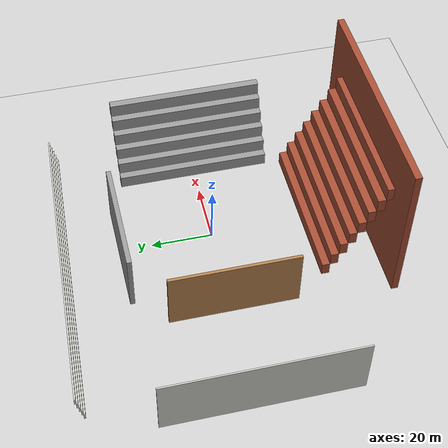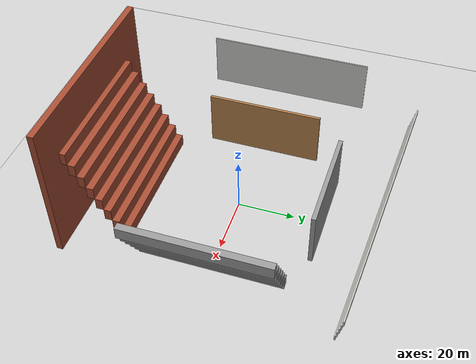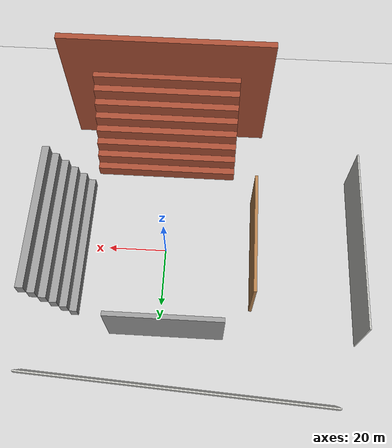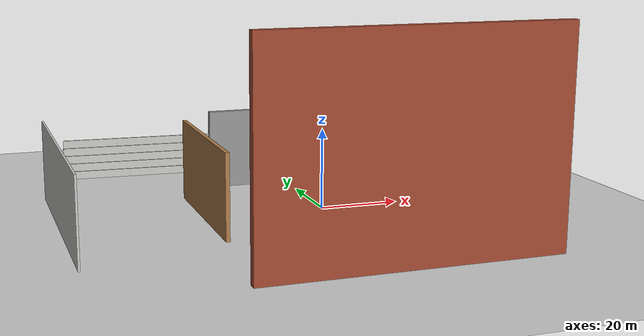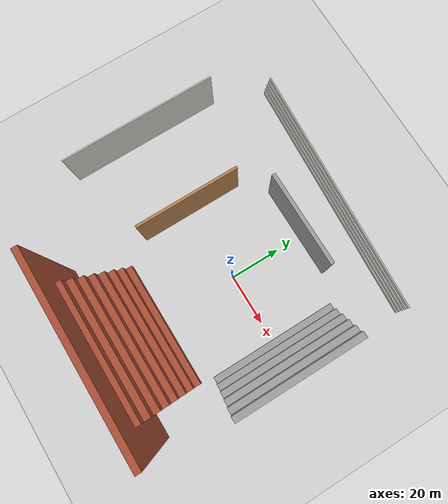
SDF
<sdf version="1.7">
 <world name="default">
  <model name="ground_plane">
   <static>1</static>
   <link name="link">
    <collision name="collision">
     <geometry><plane><normal>0 0 1</normal><size>100 100</size></plane></geometry>
     <surface><friction><ode><mu>100</mu><mu2>50</mu2></ode></friction></surface>
    </collision>
    <visual name="visual">
     <cast_shadows>0</cast_shadows>
     <geometry><plane><normal>0 0 1</normal><size>100 100</size></plane></geometry>
     <material>
      <script><uri>file://media/materials/scripts/gazebo.material</uri><name>Gazebo/Grey</name></script>
     </material>
    </visual>
   </link>
  </model>
  <light name="sun" type="directional">
   <pose>0 0 10 0 -0 0</pose>
   <diffuse>0.8 0.8 0.8 1</diffuse>
   <specular>0.2 0.2 0.2 1</specular>
   <attenuation>
    <range>1000</range>
    <constant>0.9</constant>
    <linear>0.01</linear>
    <quadratic>0.001</quadratic>
   </attenuation>
   <direction>-0.5 0.1 -0.9</direction>
   <spot><inner_angle>0</inner_angle><outer_angle>0</outer_angle><falloff>0</falloff></spot>
  </light>
  <physics name="default_physics" default="0" type="ode">
   <max_contacts>100</max_contacts>
   <max_step_size>0.01</max_step_size>
   <ode>
    <solver>
     <iters>50</iters>
     <type>quick</type>
     <sor>1.3</sor>
     <use_dynamic_moi_rescaling>0</use_dynamic_moi_rescaling>
    </solver>
    <constraints>
     <cfm>0</cfm>
     <erp>0.2</erp>
     <contact_max_correcting_vel>100</contact_max_correcting_vel>
     <contact_surface_layer>0.001</contact_surface_layer>
    </constraints>
   </ode>
   <real_time_factor>1</real_time_factor>
   <real_time_update_rate>1000</real_time_update_rate>
  </physics>
  <gravity>0 0 -9.8</gravity>
  <magnetic_field>6e-06 2.3e-05 -4.2e-05</magnetic_field>
  <atmosphere type="adiabatic"/>
  <scene><ambient>0.4 0.4 0.4 1</ambient><background>0.7 0.7 0.7 1</background><shadows>1</shadows></scene>
  <spherical_coordinates>
   <surface_model>EARTH_WGS84</surface_model>
   <latitude_deg>0</latitude_deg>
   <longitude_deg>0</longitude_deg>
   <elevation>0</elevation>
   <heading_deg>0</heading_deg>
  </spherical_coordinates>
  <model name="Untitled_0">
   <pose>1.76469 -50.5759 0 0 -0 0</pose>
   <link name="Wall_0">
    <collision name="Wall_0_Collision">
     <geometry><box><size>70.5 2.15 50.5</size></box></geometry>
     <pose>0 0 25.25 0 -0 0</pose>
    </collision>
    <visual name="Wall_0_Visual">
     <pose>0 0 25.25 0 -0 0</pose>
     <geometry><box><size>70.5 2.15 50.5</size></box></geometry>
     <material>
      <script><uri>file://media/materials/scripts/gazebo.material</uri><name>Gazebo/Bricks</name></script>
      <ambient>1 1 1 1</ambient>
     </material>
     <meta><layer>0</layer></meta>
    </visual>
   </link>
   <static>1</static>
  </model>
  <model name="Untitled_1">
   <pose>-64.542 -0.116687 0 0 -0 0</pose>
   <link name="Wall_2">
    <collision name="Wall_2_Collision">
     <geometry><box><size>61.25 0.5 20.5</size></box></geometry>
     <pose>0 0 10.25 0 -0 0</pose>
    </collision>
    <visual name="Wall_2_Visual">
     <pose>0 0 10.25 0 -0 0</pose>
     <geometry><box><size>61.25 0.5 20.5</size></box></geometry>
     <material>
      <script><uri>file://media/materials/scripts/gazebo.material</uri><name>Gazebo/CeilingTiled</name></script>
      <ambient>0.996078 0.47451 0.0196078 1</ambient>
     </material>
     <meta><layer>0</layer></meta>
    </visual>
    <pose>0 -1e-06 0 0 -0 1.5708</pose>
   </link>
   <link name="Wall_3">
    <collision name="Wall_3_Collision">
     <geometry><box><size>0.15 0.15 2.5</size></box></geometry>
     <pose>0 0 1.25 0 -0 0</pose>
    </collision>
    <visual name="Wall_3_Visual">
     <pose>0 0 1.25 0 -0 0</pose>
     <geometry><box><size>0.15 0.15 2.5</size></box></geometry>
     <material>
      <script><uri>file://media/materials/scripts/gazebo.material</uri><name>Gazebo/Grey</name></script>
      <ambient>1 1 1 1</ambient>
     </material>
     <meta><layer>0</layer></meta>
    </visual>
    <pose>0 30.375 0 0 -0 0</pose>
   </link>
   <static>1</static>
  </model>
  <model name="Untitled_2">
   <pose>-6.95253 48.424 0 0 -0 3.08477</pose>
   <link name="Stairs_1">
    <visual name="Stairs_1_Visual_0">
     <pose>-1e-06 1 1.05 0 -0 0</pose>
     <geometry><box><size>100.66 0.5 2.1</size></box></geometry>
     <material>
      <script><uri>file://media/materials/scripts/gazebo.material</uri><name>Gazebo/CeilingTiled</name></script>
      <ambient>0.996078 0.47451 0.0196078 1</ambient>
     </material>
     <meta><layer>0</layer></meta>
    </visual>
    <collision name="Stairs_1_Collision_0">
     <geometry><box><size>100.66 0.5 2.1</size></box></geometry>
     <pose>-1e-06 1 1.05 0 -0 0</pose>
    </collision>
    <visual name="Stairs_1_Visual_1">
     <pose>-1e-06 0.5 3.15 0 -0 0</pose>
     <geometry><box><size>100.66 0.5 2.1</size></box></geometry>
     <material>
      <script><uri>file://media/materials/scripts/gazebo.material</uri><name>Gazebo/CeilingTiled</name></script>
      <ambient>0.996078 0.47451 0.0196078 1</ambient>
     </material>
     <meta><layer>0</layer></meta>
    </visual>
    <collision name="Stairs_1_Collision_1">
     <geometry><box><size>100.66 0.5 2.1</size></box></geometry>
     <pose>-1e-06 0.5 3.15 0 -0 0</pose>
    </collision>
    <visual name="Stairs_1_Visual_2">
     <pose>-1e-06 0 5.25 0 -0 0</pose>
     <geometry><box><size>100.66 0.5 2.1</size></box></geometry>
     <material>
      <script><uri>file://media/materials/scripts/gazebo.material</uri><name>Gazebo/CeilingTiled</name></script>
      <ambient>0.996078 0.47451 0.0196078 1</ambient>
     </material>
     <meta><layer>0</layer></meta>
    </visual>
    <collision name="Stairs_1_Collision_2">
     <geometry><box><size>100.66 0.5 2.1</size></box></geometry>
     <pose>-1e-06 0 5.25 0 -0 0</pose>
    </collision>
    <visual name="Stairs_1_Visual_3">
     <pose>-1e-06 -0.5 7.35 0 -0 0</pose>
     <geometry><box><size>100.66 0.5 2.1</size></box></geometry>
     <material>
      <script><uri>file://media/materials/scripts/gazebo.material</uri><name>Gazebo/CeilingTiled</name></script>
      <ambient>0.996078 0.47451 0.0196078 1</ambient>
     </material>
     <meta><layer>0</layer></meta>
    </visual>
    <collision name="Stairs_1_Collision_3">
     <geometry><box><size>100.66 0.5 2.1</size></box></geometry>
     <pose>-1e-06 -0.5 7.35 0 -0 0</pose>
    </collision>
    <visual name="Stairs_1_Visual_4">
     <pose>-1e-06 -1 9.45 0 -0 0</pose>
     <geometry><box><size>100.66 0.5 2.1</size></box></geometry>
     <material>
      <script><uri>file://media/materials/scripts/gazebo.material</uri><name>Gazebo/CeilingTiled</name></script>
      <ambient>0.996078 0.47451 0.0196078 1</ambient>
     </material>
     <meta><layer>0</layer></meta>
    </visual>
    <collision name="Stairs_1_Collision_4">
     <geometry><box><size>100.66 0.5 2.1</size></box></geometry>
     <pose>-1e-06 -1 9.45 0 -0 0</pose>
    </collision>
   </link>
   <static>1</static>
  </model>
  <model name="Untitled_4">
   <pose>9.75 -12.5 0 0 -0 0</pose>
   <link name="Stairs_13">
    <visual name="Stairs_13_Visual_0">
     <pose>19 12.5 2.125 0 -0 1.5708</pose>
     <geometry><box><size>50 2.5 4.25</size></box></geometry>
     <material>
      <script><uri>file://media/materials/scripts/gazebo.material</uri><name>Gazebo/Grey</name></script>
      <ambient>1 1 1 1</ambient>
     </material>
     <meta><layer>0</layer></meta>
    </visual>
    <collision name="Stairs_13_Collision_0">
     <geometry><box><size>50 2.5 4.25</size></box></geometry>
     <pose>19 12.5 2.125 0 -0 1.5708</pose>
    </collision>
    <visual name="Stairs_13_Visual_1">
     <pose>21.5 12.5 6.375 0 -0 1.5708</pose>
     <geometry><box><size>50 2.5 4.25</size></box></geometry>
     <material>
      <script><uri>file://media/materials/scripts/gazebo.material</uri><name>Gazebo/Grey</name></script>
      <ambient>1 1 1 1</ambient>
     </material>
     <meta><layer>0</layer></meta>
    </visual>
    <collision name="Stairs_13_Collision_1">
     <geometry><box><size>50 2.5 4.25</size></box></geometry>
     <pose>21.5 12.5 6.375 0 -0 1.5708</pose>
    </collision>
    <visual name="Stairs_13_Visual_2">
     <pose>24 12.5 10.625 0 -0 1.5708</pose>
     <geometry><box><size>50 2.5 4.25</size></box></geometry>
     <material>
      <script><uri>file://media/materials/scripts/gazebo.material</uri><name>Gazebo/Grey</name></script>
      <ambient>1 1 1 1</ambient>
     </material>
     <meta><layer>0</layer></meta>
    </visual>
    <collision name="Stairs_13_Collision_2">
     <geometry><box><size>50 2.5 4.25</size></box></geometry>
     <pose>24 12.5 10.625 0 -0 1.5708</pose>
    </collision>
    <visual name="Stairs_13_Visual_3">
     <pose>26.5 12.5 14.875 0 -0 1.5708</pose>
     <geometry><box><size>50 2.5 4.25</size></box></geometry>
     <material>
      <script><uri>file://media/materials/scripts/gazebo.material</uri><name>Gazebo/Grey</name></script>
      <ambient>1 1 1 1</ambient>
     </material>
     <meta><layer>0</layer></meta>
    </visual>
    <collision name="Stairs_13_Collision_3">
     <geometry><box><size>50 2.5 4.25</size></box></geometry>
     <pose>26.5 12.5 14.875 0 -0 1.5708</pose>
    </collision>
    <visual name="Stairs_13_Visual_4">
     <pose>29 12.5 19.125 0 -0 1.5708</pose>
     <geometry><box><size>50 2.5 4.25</size></box></geometry>
     <material>
      <script><uri>file://media/materials/scripts/gazebo.material</uri><name>Gazebo/Grey</name></script>
      <ambient>1 1 1 1</ambient>
     </material>
     <meta><layer>0</layer></meta>
    </visual>
    <collision name="Stairs_13_Collision_4">
     <geometry><box><size>50 2.5 4.25</size></box></geometry>
     <pose>29 12.5 19.125 0 -0 1.5708</pose>
    </collision>
    <visual name="Stairs_13_Visual_5">
     <pose>31.5 12.5 23.375 0 -0 1.5708</pose>
     <geometry><box><size>50 2.5 4.25</size></box></geometry>
     <material>
      <script><uri>file://media/materials/scripts/gazebo.material</uri><name>Gazebo/Grey</name></script>
      <ambient>1 1 1 1</ambient>
     </material>
     <meta><layer>0</layer></meta>
    </visual>
    <collision name="Stairs_13_Collision_5">
     <geometry><box><size>50 2.5 4.25</size></box></geometry>
     <pose>31.5 12.5 23.375 0 -0 1.5708</pose>
    </collision>
   </link>
   <link name="Stairs_8">
    <visual name="Stairs_8_Visual_0">
     <pose>-7.75 -18.75 2.1875 0 -0 0</pose>
     <geometry><box><size>50 2.5 4.375</size></box></geometry>
     <material>
      <script><uri>file://media/materials/scripts/gazebo.material</uri><name>Gazebo/Bricks</name></script>
      <ambient>1 1 1 1</ambient>
     </material>
     <meta><layer>0</layer></meta>
    </visual>
    <collision name="Stairs_8_Collision_0">
     <geometry><box><size>50 2.5 4.375</size></box></geometry>
     <pose>-7.75 -18.75 2.1875 0 -0 0</pose>
    </collision>
    <visual name="Stairs_8_Visual_1">
     <pose>-7.75 -21.25 6.5625 0 -0 0</pose>
     <geometry><box><size>50 2.5 4.375</size></box></geometry>
     <material>
      <script><uri>file://media/materials/scripts/gazebo.material</uri><name>Gazebo/Bricks</name></script>
      <ambient>1 1 1 1</ambient>
     </material>
     <meta><layer>0</layer></meta>
    </visual>
    <collision name="Stairs_8_Collision_1">
     <geometry><box><size>50 2.5 4.375</size></box></geometry>
     <pose>-7.75 -21.25 6.5625 0 -0 0</pose>
    </collision>
    <visual name="Stairs_8_Visual_2">
     <pose>-7.75 -23.75 10.9375 0 -0 0</pose>
     <geometry><box><size>50 2.5 4.375</size></box></geometry>
     <material>
      <script><uri>file://media/materials/scripts/gazebo.material</uri><name>Gazebo/Bricks</name></script>
      <ambient>1 1 1 1</ambient>
     </material>
     <meta><layer>0</layer></meta>
    </visual>
    <collision name="Stairs_8_Collision_2">
     <geometry><box><size>50 2.5 4.375</size></box></geometry>
     <pose>-7.75 -23.75 10.9375 0 -0 0</pose>
    </collision>
    <visual name="Stairs_8_Visual_3">
     <pose>-7.75 -26.25 15.3125 0 -0 0</pose>
     <geometry><box><size>50 2.5 4.375</size></box></geometry>
     <material>
      <script><uri>file://media/materials/scripts/gazebo.material</uri><name>Gazebo/Bricks</name></script>
      <ambient>1 1 1 1</ambient>
     </material>
     <meta><layer>0</layer></meta>
    </visual>
    <collision name="Stairs_8_Collision_3">
     <geometry><box><size>50 2.5 4.375</size></box></geometry>
     <pose>-7.75 -26.25 15.3125 0 -0 0</pose>
    </collision>
    <visual name="Stairs_8_Visual_4">
     <pose>-7.75 -28.75 19.6875 0 -0 0</pose>
     <geometry><box><size>50 2.5 4.375</size></box></geometry>
     <material>
      <script><uri>file://media/materials/scripts/gazebo.material</uri><name>Gazebo/Bricks</name></script>
      <ambient>1 1 1 1</ambient>
     </material>
     <meta><layer>0</layer></meta>
    </visual>
    <collision name="Stairs_8_Collision_4">
     <geometry><box><size>50 2.5 4.375</size></box></geometry>
     <pose>-7.75 -28.75 19.6875 0 -0 0</pose>
    </collision>
    <visual name="Stairs_8_Visual_5">
     <pose>-7.75 -31.25 24.0625 0 -0 0</pose>
     <geometry><box><size>50 2.5 4.375</size></box></geometry>
     <material>
      <script><uri>file://media/materials/scripts/gazebo.material</uri><name>Gazebo/Bricks</name></script>
      <ambient>1 1 1 1</ambient>
     </material>
     <meta><layer>0</layer></meta>
    </visual>
    <collision name="Stairs_8_Collision_5">
     <geometry><box><size>50 2.5 4.375</size></box></geometry>
     <pose>-7.75 -31.25 24.0625 0 -0 0</pose>
    </collision>
    <visual name="Stairs_8_Visual_6">
     <pose>-7.75 -33.75 28.4375 0 -0 0</pose>
     <geometry><box><size>50 2.5 4.375</size></box></geometry>
     <material>
      <script><uri>file://media/materials/scripts/gazebo.material</uri><name>Gazebo/Bricks</name></script>
      <ambient>1 1 1 1</ambient>
     </material>
     <meta><layer>0</layer></meta>
    </visual>
    <collision name="Stairs_8_Collision_6">
     <geometry><box><size>50 2.5 4.375</size></box></geometry>
     <pose>-7.75 -33.75 28.4375 0 -0 0</pose>
    </collision>
    <visual name="Stairs_8_Visual_7">
     <pose>-7.75 -36.25 32.8125 0 -0 0</pose>
     <geometry><box><size>50 2.5 4.375</size></box></geometry>
     <material>
      <script><uri>file://media/materials/scripts/gazebo.material</uri><name>Gazebo/Bricks</name></script>
      <ambient>1 1 1 1</ambient>
     </material>
     <meta><layer>0</layer></meta>
    </visual>
    <collision name="Stairs_8_Collision_7">
     <geometry><box><size>50 2.5 4.375</size></box></geometry>
     <pose>-7.75 -36.25 32.8125 0 -0 0</pose>
    </collision>
   </link>
   <static>1</static>
  </model>
  <model name="Untitled">
   <pose>-7.0025 5.125 0 0 -0 0</pose>
   <link name="Wall_0">
    <collision name="Wall_0_Collision">
     <geometry><box><size>41 1 20.5</size></box></geometry>
     <pose>0 0 10.25 0 -0 0</pose>
    </collision>
    <visual name="Wall_0_Visual">
     <pose>0 0 10.25 0 -0 0</pose>
     <geometry><box><size>41 1 20.5</size></box></geometry>
     <material>
      <script><uri>file://media/materials/scripts/gazebo.material</uri><name>Gazebo/Wood</name></script>
      <ambient>0.760784 0.662745 0.627451 1</ambient>
     </material>
     <meta><layer>0</layer></meta>
    </visual>
    <pose>-22.9975 -5.125 0 0 -0 1.5708</pose>
   </link>
   <link name="Wall_3">
    <collision name="Wall_3_Collision">
     <geometry><box><size>37.6 1.5 20.5</size></box></geometry>
     <pose>0 0 10.25 0 -0 0</pose>
    </collision>
    <visual name="Wall_3_Visual">
     <pose>0 0 10.25 0 -0 0</pose>
     <geometry><box><size>37.6 1.5 20.5</size></box></geometry>
     <material>
      <script><uri>file://media/materials/scripts/gazebo.material</uri><name>Gazebo/Grey</name></script>
      <ambient>1 1 1 1</ambient>
     </material>
     <meta><layer>0</layer></meta>
    </visual>
    <pose>4.6975 24.875 0 0 -0 3.14159</pose>
   </link>
   <link name="Wall_4">
    <collision name="Wall_4_Collision">
     <geometry><box><size>0.15 0.15 2.5</size></box></geometry>
     <pose>0 0 1.25 0 -0 0</pose>
    </collision>
    <visual name="Wall_4_Visual">
     <pose>0 0 1.25 0 -0 0</pose>
     <geometry><box><size>0.15 0.15 2.5</size></box></geometry>
     <material>
      <script><uri>file://media/materials/scripts/gazebo.material</uri><name>Gazebo/Grey</name></script>
      <ambient>1 1 1 1</ambient>
     </material>
     <meta><layer>0</layer></meta>
    </visual>
    <pose>-13.3525 24.875 0 0 -0 0</pose>
   </link>
   <static>1</static>
  </model>
 </world>
</sdf>
